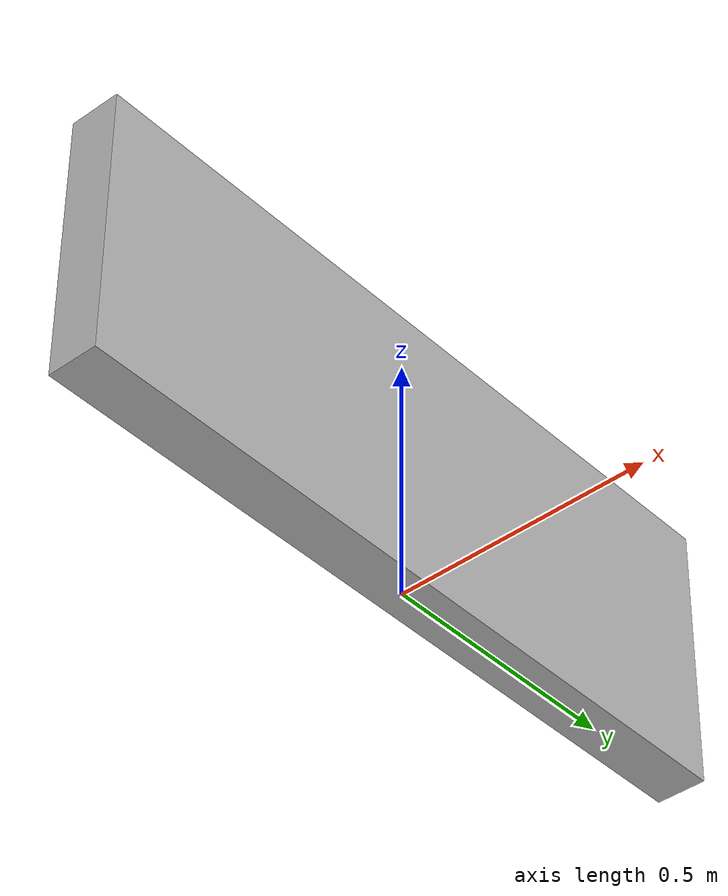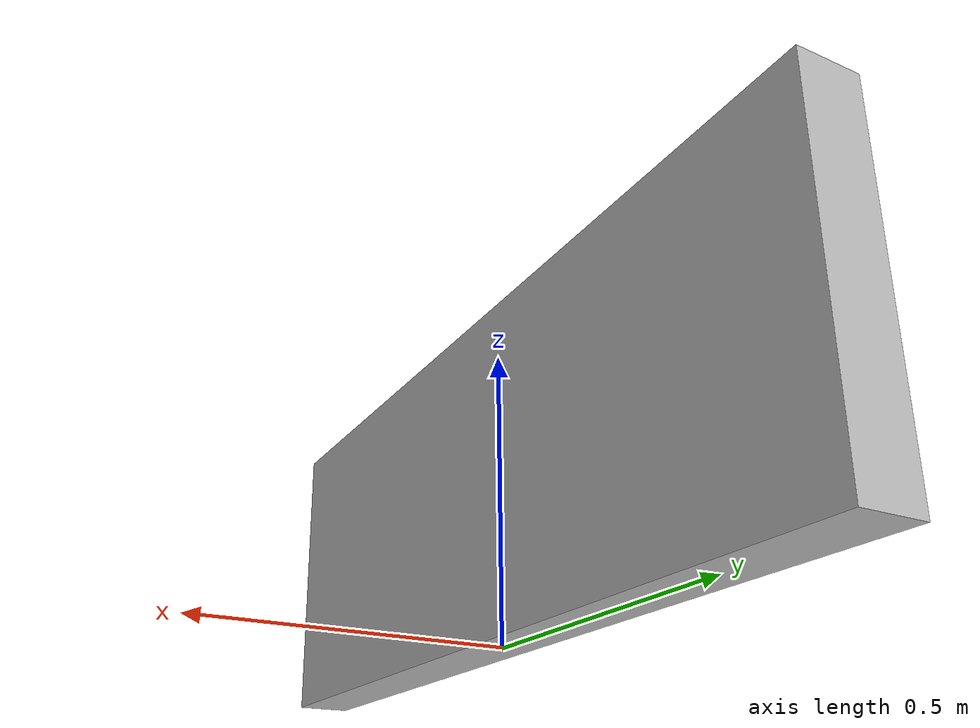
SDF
<?xml version="1.0"?>
<sdf version="1.6">
    <model name="collision_object">
        <pose>0 0 0.275 0 0 0</pose>
        <static>false</static>
        <link name="collision_object">
            <inertial>
                <mass>1</mass>
                <inertia>
                    <ixx>0.1</ixx>
                    <ixy>0.0</ixy>
                    <ixz>0.0</ixz>
                    <iyy>0.1</iyy>
                    <iyz>0.0</iyz>
                    <izz>0.1</izz>
                </inertia>
            </inertial>
            <collision name="collision">
                <geometry>
                    <box>
                        <size>0.1 1.5 0.55</size>
                    </box>
                </geometry>
            </collision>
            <visual name="visual">
                <geometry>
                    <box>
                        <size>0.1 1.5 0.55</size>
                    </box>
                </geometry>
            </visual>
        </link>
    </model>
</sdf>
